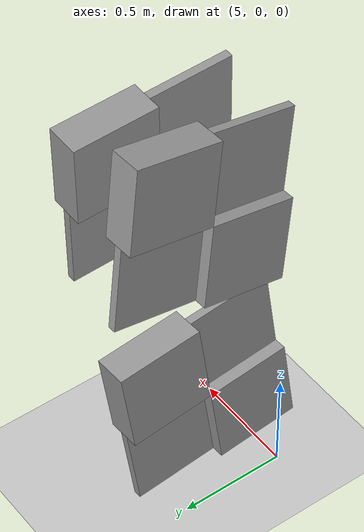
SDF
<sdf version="1.7">
 <world name="default">
  <model name="ground_plane">
   <static>1</static>
   <link name="link">
    <collision name="collision">
     <geometry><plane><normal>0 0 1</normal><size>100 100</size></plane></geometry>
     <surface>
      <contact><collide_bitmask>65535</collide_bitmask></contact>
      <friction><ode><mu>100</mu><mu2>50</mu2></ode></friction>
     </surface>
    </collision>
    <visual name="visual">
     <cast_shadows>0</cast_shadows>
     <geometry><plane><normal>0 0 1</normal><size>100 100</size></plane></geometry>
     <material>
      <script><uri>file://media/materials/scripts/gazebo.material</uri><name>Gazebo/Grey</name></script>
     </material>
    </visual>
   </link>
  </model>
  <model name="wall_slate_55">
   <static>1</static>
   <link name="link_0">
    <inertial><mass>1</mass></inertial>
    <gravity>0</gravity>
    <visual name="visual">
     <pose>0 0.2 0.2 0 -0 0</pose>
     <geometry><box><size>0.16 0.4 0.4</size></box></geometry>
     <material>
      <lighting>1</lighting>
      <script><uri>file://media/materials/scripts/gazebo.material</uri><name>Gazebo/Grey</name></script>
      <shader type="pixel"><normal_map>__default__</normal_map></shader>
      <ambient>0.3 0.3 0.3 1</ambient>
      <diffuse>0.7 0.7 0.7 1</diffuse>
      <specular>0.01 0.01 0.01 1</specular>
      <emissive>0 0 0 1</emissive>
     </material>
    </visual>
    <visual name="ModelPreview_0::link_0::visual_1">
     <pose>0 0.2 -0.2 0 -0 0</pose>
     <geometry><box><size>0.04 0.4 0.4</size></box></geometry>
     <material>
      <lighting>1</lighting>
      <script><uri>file://media/materials/scripts/gazebo.material</uri><name>Gazebo/Grey</name></script>
      <shader type="pixel"><normal_map>__default__</normal_map></shader>
      <ambient>0.3 0.3 0.3 1</ambient>
      <diffuse>0.7 0.7 0.7 1</diffuse>
      <specular>0.01 0.01 0.01 1</specular>
      <emissive>0 0 0 1</emissive>
     </material>
    </visual>
    <visual name="ModelPreview_0::link_0::visual_2">
     <pose>0 -0.2 0.2 0 -0 0</pose>
     <geometry><box><size>0.04 0.4 0.4</size></box></geometry>
     <material>
      <lighting>1</lighting>
      <script><uri>file://media/materials/scripts/gazebo.material</uri><name>Gazebo/Grey</name></script>
      <shader type="pixel"><normal_map>__default__</normal_map></shader>
      <ambient>0.3 0.3 0.3 1</ambient>
      <diffuse>0.7 0.7 0.7 1</diffuse>
      <specular>0.01 0.01 0.01 1</specular>
      <emissive>0 0 0 1</emissive>
     </material>
    </visual>
    <visual name="ModelPreview_0::link_0::visual_3">
     <pose>0 -0.2 -0.2 0 -0 0</pose>
     <geometry><box><size>0.16 0.4 0.4</size></box></geometry>
     <material>
      <lighting>1</lighting>
      <script><uri>file://media/materials/scripts/gazebo.material</uri><name>Gazebo/Grey</name></script>
      <shader type="pixel"><normal_map>__default__</normal_map></shader>
      <ambient>0.3 0.3 0.3 1</ambient>
      <diffuse>0.7 0.7 0.7 1</diffuse>
      <specular>0.01 0.01 0.01 1</specular>
      <emissive>0 0 0 1</emissive>
     </material>
    </visual>
    <collision name="collision_2">
     <pose>0 -0.2 0.2 0 -0 0</pose>
     <geometry><box><size>0.04 0.4 0.4</size></box></geometry>
     <surface>
      <friction>
       <ode><mu>1</mu><mu2>1</mu2><fdir1>0 0 0</fdir1><slip1>0</slip1><slip2>0</slip2></ode>
       <torsional>
        <coefficient>1</coefficient>
        <patch_radius>0</patch_radius>
        <surface_radius>0</surface_radius>
        <use_patch_radius>1</use_patch_radius>
        <ode><slip>0</slip></ode>
       </torsional>
      </friction>
      <bounce><restitution_coefficient>0</restitution_coefficient><threshold>1e+06</threshold></bounce>
      <contact>
       <collide_without_contact>0</collide_without_contact>
       <collide_without_contact_bitmask>1</collide_without_contact_bitmask>
       <collide_bitmask>1</collide_bitmask>
       <ode>
        <soft_cfm>0</soft_cfm>
        <soft_erp>0.2</soft_erp>
        <kp>1e+13</kp>
        <kd>1</kd>
        <max_vel>0.01</max_vel>
        <min_depth>0</min_depth>
       </ode>
       <bullet>
        <split_impulse>1</split_impulse>
        <split_impulse_penetration_threshold>-0.01</split_impulse_penetration_threshold>
        <soft_cfm>0</soft_cfm>
        <soft_erp>0.2</soft_erp>
        <kp>1e+13</kp>
        <kd>1</kd>
       </bullet>
      </contact>
     </surface>
    </collision>
    <collision name="collision_1">
     <pose>0 0.2 -0.2 0 -0 0</pose>
     <geometry><box><size>0.04 0.4 0.4</size></box></geometry>
     <surface>
      <friction>
       <ode><mu>1</mu><mu2>1</mu2><fdir1>0 0 0</fdir1><slip1>0</slip1><slip2>0</slip2></ode>
       <torsional>
        <coefficient>1</coefficient>
        <patch_radius>0</patch_radius>
        <surface_radius>0</surface_radius>
        <use_patch_radius>1</use_patch_radius>
        <ode><slip>0</slip></ode>
       </torsional>
      </friction>
      <bounce><restitution_coefficient>0</restitution_coefficient><threshold>1e+06</threshold></bounce>
      <contact>
       <collide_without_contact>0</collide_without_contact>
       <collide_without_contact_bitmask>1</collide_without_contact_bitmask>
       <collide_bitmask>1</collide_bitmask>
       <ode>
        <soft_cfm>0</soft_cfm>
        <soft_erp>0.2</soft_erp>
        <kp>1e+13</kp>
        <kd>1</kd>
        <max_vel>0.01</max_vel>
        <min_depth>0</min_depth>
       </ode>
       <bullet>
        <split_impulse>1</split_impulse>
        <split_impulse_penetration_threshold>-0.01</split_impulse_penetration_threshold>
        <soft_cfm>0</soft_cfm>
        <soft_erp>0.2</soft_erp>
        <kp>1e+13</kp>
        <kd>1</kd>
       </bullet>
      </contact>
     </surface>
    </collision>
    <collision name="collision_4">
     <pose>0 0.2 0.2 0 -0 0</pose>
     <geometry><box><size>0.16 0.4 0.4</size></box></geometry>
     <surface>
      <friction>
       <ode><mu>1</mu><mu2>1</mu2><fdir1>0 0 0</fdir1><slip1>0</slip1><slip2>0</slip2></ode>
       <torsional>
        <coefficient>1</coefficient>
        <patch_radius>0</patch_radius>
        <surface_radius>0</surface_radius>
        <use_patch_radius>1</use_patch_radius>
        <ode><slip>0</slip></ode>
       </torsional>
      </friction>
      <bounce><restitution_coefficient>0</restitution_coefficient><threshold>1e+06</threshold></bounce>
      <contact>
       <collide_without_contact>0</collide_without_contact>
       <collide_without_contact_bitmask>1</collide_without_contact_bitmask>
       <collide_bitmask>1</collide_bitmask>
       <ode>
        <soft_cfm>0</soft_cfm>
        <soft_erp>0.2</soft_erp>
        <kp>1e+13</kp>
        <kd>1</kd>
        <max_vel>0.01</max_vel>
        <min_depth>0</min_depth>
       </ode>
       <bullet>
        <split_impulse>1</split_impulse>
        <split_impulse_penetration_threshold>-0.01</split_impulse_penetration_threshold>
        <soft_cfm>0</soft_cfm>
        <soft_erp>0.2</soft_erp>
        <kp>1e+13</kp>
        <kd>1</kd>
       </bullet>
      </contact>
     </surface>
    </collision>
    <collision name="collision_3">
     <pose>0 -0.2 -0.2 0 -0 0</pose>
     <geometry><box><size>0.16 0.4 0.4</size></box></geometry>
     <surface>
      <friction>
       <ode><mu>1</mu><mu2>1</mu2><fdir1>0 0 0</fdir1><slip1>0</slip1><slip2>0</slip2></ode>
       <torsional>
        <coefficient>1</coefficient>
        <patch_radius>0</patch_radius>
        <surface_radius>0</surface_radius>
        <use_patch_radius>1</use_patch_radius>
        <ode><slip>0</slip></ode>
       </torsional>
      </friction>
      <bounce><restitution_coefficient>0</restitution_coefficient><threshold>1e+06</threshold></bounce>
      <contact>
       <collide_without_contact>0</collide_without_contact>
       <collide_without_contact_bitmask>1</collide_without_contact_bitmask>
       <collide_bitmask>1</collide_bitmask>
       <ode>
        <soft_cfm>0</soft_cfm>
        <soft_erp>0.2</soft_erp>
        <kp>1e+13</kp>
        <kd>1</kd>
        <max_vel>0.01</max_vel>
        <min_depth>0</min_depth>
       </ode>
       <bullet>
        <split_impulse>1</split_impulse>
        <split_impulse_penetration_threshold>-0.01</split_impulse_penetration_threshold>
        <soft_cfm>0</soft_cfm>
        <soft_erp>0.2</soft_erp>
        <kp>1e+13</kp>
        <kd>1</kd>
       </bullet>
      </contact>
     </surface>
    </collision>
   </link>
   <pose>5.47851 0.341177 1.6 -0.04 -0.04 0.0049</pose>
  </model>
  <model name="wall_slate_77">
   <static>1</static>
   <link name="link_0">
    <inertial><mass>1</mass></inertial>
    <gravity>0</gravity>
    <visual name="visual">
     <pose>0 0.2 0.2 0 -0 0</pose>
     <geometry><box><size>0.16 0.4 0.4</size></box></geometry>
     <material>
      <lighting>1</lighting>
      <script><uri>file://media/materials/scripts/gazebo.material</uri><name>Gazebo/Grey</name></script>
      <shader type="pixel"><normal_map>__default__</normal_map></shader>
      <ambient>0.3 0.3 0.3 1</ambient>
      <diffuse>0.7 0.7 0.7 1</diffuse>
      <specular>0.01 0.01 0.01 1</specular>
      <emissive>0 0 0 1</emissive>
     </material>
    </visual>
    <visual name="ModelPreview_0::link_0::visual_1">
     <pose>0 0.2 -0.2 0 -0 0</pose>
     <geometry><box><size>0.04 0.4 0.4</size></box></geometry>
     <material>
      <lighting>1</lighting>
      <script><uri>file://media/materials/scripts/gazebo.material</uri><name>Gazebo/Grey</name></script>
      <shader type="pixel"><normal_map>__default__</normal_map></shader>
      <ambient>0.3 0.3 0.3 1</ambient>
      <diffuse>0.7 0.7 0.7 1</diffuse>
      <specular>0.01 0.01 0.01 1</specular>
      <emissive>0 0 0 1</emissive>
     </material>
    </visual>
    <visual name="ModelPreview_0::link_0::visual_2">
     <pose>0 -0.2 0.2 0 -0 0</pose>
     <geometry><box><size>0.04 0.4 0.4</size></box></geometry>
     <material>
      <lighting>1</lighting>
      <script><uri>file://media/materials/scripts/gazebo.material</uri><name>Gazebo/Grey</name></script>
      <shader type="pixel"><normal_map>__default__</normal_map></shader>
      <ambient>0.3 0.3 0.3 1</ambient>
      <diffuse>0.7 0.7 0.7 1</diffuse>
      <specular>0.01 0.01 0.01 1</specular>
      <emissive>0 0 0 1</emissive>
     </material>
    </visual>
    <visual name="ModelPreview_0::link_0::visual_3">
     <pose>0 -0.2 -0.2 0 -0 0</pose>
     <geometry><box><size>0.16 0.4 0.4</size></box></geometry>
     <material>
      <lighting>1</lighting>
      <script><uri>file://media/materials/scripts/gazebo.material</uri><name>Gazebo/Grey</name></script>
      <shader type="pixel"><normal_map>__default__</normal_map></shader>
      <ambient>0.3 0.3 0.3 1</ambient>
      <diffuse>0.7 0.7 0.7 1</diffuse>
      <specular>0.01 0.01 0.01 1</specular>
      <emissive>0 0 0 1</emissive>
     </material>
    </visual>
    <collision name="collision_2">
     <pose>0 -0.2 0.2 0 -0 0</pose>
     <geometry><box><size>0.04 0.4 0.4</size></box></geometry>
     <surface>
      <friction>
       <ode><mu>1</mu><mu2>1</mu2><fdir1>0 0 0</fdir1><slip1>0</slip1><slip2>0</slip2></ode>
       <torsional>
        <coefficient>1</coefficient>
        <patch_radius>0</patch_radius>
        <surface_radius>0</surface_radius>
        <use_patch_radius>1</use_patch_radius>
        <ode><slip>0</slip></ode>
       </torsional>
      </friction>
      <bounce><restitution_coefficient>0</restitution_coefficient><threshold>1e+06</threshold></bounce>
      <contact>
       <collide_without_contact>0</collide_without_contact>
       <collide_without_contact_bitmask>1</collide_without_contact_bitmask>
       <collide_bitmask>1</collide_bitmask>
       <ode>
        <soft_cfm>0</soft_cfm>
        <soft_erp>0.2</soft_erp>
        <kp>1e+13</kp>
        <kd>1</kd>
        <max_vel>0.01</max_vel>
        <min_depth>0</min_depth>
       </ode>
       <bullet>
        <split_impulse>1</split_impulse>
        <split_impulse_penetration_threshold>-0.01</split_impulse_penetration_threshold>
        <soft_cfm>0</soft_cfm>
        <soft_erp>0.2</soft_erp>
        <kp>1e+13</kp>
        <kd>1</kd>
       </bullet>
      </contact>
     </surface>
    </collision>
    <collision name="collision_1">
     <pose>0 0.2 -0.2 0 -0 0</pose>
     <geometry><box><size>0.04 0.4 0.4</size></box></geometry>
     <surface>
      <friction>
       <ode><mu>1</mu><mu2>1</mu2><fdir1>0 0 0</fdir1><slip1>0</slip1><slip2>0</slip2></ode>
       <torsional>
        <coefficient>1</coefficient>
        <patch_radius>0</patch_radius>
        <surface_radius>0</surface_radius>
        <use_patch_radius>1</use_patch_radius>
        <ode><slip>0</slip></ode>
       </torsional>
      </friction>
      <bounce><restitution_coefficient>0</restitution_coefficient><threshold>1e+06</threshold></bounce>
      <contact>
       <collide_without_contact>0</collide_without_contact>
       <collide_without_contact_bitmask>1</collide_without_contact_bitmask>
       <collide_bitmask>1</collide_bitmask>
       <ode>
        <soft_cfm>0</soft_cfm>
        <soft_erp>0.2</soft_erp>
        <kp>1e+13</kp>
        <kd>1</kd>
        <max_vel>0.01</max_vel>
        <min_depth>0</min_depth>
       </ode>
       <bullet>
        <split_impulse>1</split_impulse>
        <split_impulse_penetration_threshold>-0.01</split_impulse_penetration_threshold>
        <soft_cfm>0</soft_cfm>
        <soft_erp>0.2</soft_erp>
        <kp>1e+13</kp>
        <kd>1</kd>
       </bullet>
      </contact>
     </surface>
    </collision>
    <collision name="collision_4">
     <pose>0 0.2 0.2 0 -0 0</pose>
     <geometry><box><size>0.16 0.4 0.4</size></box></geometry>
     <surface>
      <friction>
       <ode><mu>1</mu><mu2>1</mu2><fdir1>0 0 0</fdir1><slip1>0</slip1><slip2>0</slip2></ode>
       <torsional>
        <coefficient>1</coefficient>
        <patch_radius>0</patch_radius>
        <surface_radius>0</surface_radius>
        <use_patch_radius>1</use_patch_radius>
        <ode><slip>0</slip></ode>
       </torsional>
      </friction>
      <bounce><restitution_coefficient>0</restitution_coefficient><threshold>1e+06</threshold></bounce>
      <contact>
       <collide_without_contact>0</collide_without_contact>
       <collide_without_contact_bitmask>1</collide_without_contact_bitmask>
       <collide_bitmask>1</collide_bitmask>
       <ode>
        <soft_cfm>0</soft_cfm>
        <soft_erp>0.2</soft_erp>
        <kp>1e+13</kp>
        <kd>1</kd>
        <max_vel>0.01</max_vel>
        <min_depth>0</min_depth>
       </ode>
       <bullet>
        <split_impulse>1</split_impulse>
        <split_impulse_penetration_threshold>-0.01</split_impulse_penetration_threshold>
        <soft_cfm>0</soft_cfm>
        <soft_erp>0.2</soft_erp>
        <kp>1e+13</kp>
        <kd>1</kd>
       </bullet>
      </contact>
     </surface>
    </collision>
    <collision name="collision_3">
     <pose>0 -0.2 -0.2 0 -0 0</pose>
     <geometry><box><size>0.16 0.4 0.4</size></box></geometry>
     <surface>
      <friction>
       <ode><mu>1</mu><mu2>1</mu2><fdir1>0 0 0</fdir1><slip1>0</slip1><slip2>0</slip2></ode>
       <torsional>
        <coefficient>1</coefficient>
        <patch_radius>0</patch_radius>
        <surface_radius>0</surface_radius>
        <use_patch_radius>1</use_patch_radius>
        <ode><slip>0</slip></ode>
       </torsional>
      </friction>
      <bounce><restitution_coefficient>0</restitution_coefficient><threshold>1e+06</threshold></bounce>
      <contact>
       <collide_without_contact>0</collide_without_contact>
       <collide_without_contact_bitmask>1</collide_without_contact_bitmask>
       <collide_bitmask>1</collide_bitmask>
       <ode>
        <soft_cfm>0</soft_cfm>
        <soft_erp>0.2</soft_erp>
        <kp>1e+13</kp>
        <kd>1</kd>
        <max_vel>0.01</max_vel>
        <min_depth>0</min_depth>
       </ode>
       <bullet>
        <split_impulse>1</split_impulse>
        <split_impulse_penetration_threshold>-0.01</split_impulse_penetration_threshold>
        <soft_cfm>0</soft_cfm>
        <soft_erp>0.2</soft_erp>
        <kp>1e+13</kp>
        <kd>1</kd>
       </bullet>
      </contact>
     </surface>
    </collision>
   </link>
   <pose>5.12851 0.341175 0.6 -0.1 0.08 0.0049</pose>
  </model>
  <model name="wall_slate_102">
   <static>1</static>
   <link name="link_0">
    <inertial><mass>1</mass></inertial>
    <gravity>0</gravity>
    <visual name="visual">
     <pose>0 0.2 0.2 0 -0 0</pose>
     <geometry><box><size>0.16 0.4 0.4</size></box></geometry>
     <material>
      <lighting>1</lighting>
      <script><uri>file://media/materials/scripts/gazebo.material</uri><name>Gazebo/Grey</name></script>
      <shader type="pixel"><normal_map>__default__</normal_map></shader>
      <ambient>0.3 0.3 0.3 1</ambient>
      <diffuse>0.7 0.7 0.7 1</diffuse>
      <specular>0.01 0.01 0.01 1</specular>
      <emissive>0 0 0 1</emissive>
     </material>
    </visual>
    <visual name="ModelPreview_0::link_0::visual_1">
     <pose>0 0.2 -0.2 0 -0 0</pose>
     <geometry><box><size>0.04 0.4 0.4</size></box></geometry>
     <material>
      <lighting>1</lighting>
      <script><uri>file://media/materials/scripts/gazebo.material</uri><name>Gazebo/Grey</name></script>
      <shader type="pixel"><normal_map>__default__</normal_map></shader>
      <ambient>0.3 0.3 0.3 1</ambient>
      <diffuse>0.7 0.7 0.7 1</diffuse>
      <specular>0.01 0.01 0.01 1</specular>
      <emissive>0 0 0 1</emissive>
     </material>
    </visual>
    <visual name="ModelPreview_0::link_0::visual_2">
     <pose>0 -0.2 0.2 0 -0 0</pose>
     <geometry><box><size>0.04 0.4 0.4</size></box></geometry>
     <material>
      <lighting>1</lighting>
      <script><uri>file://media/materials/scripts/gazebo.material</uri><name>Gazebo/Grey</name></script>
      <shader type="pixel"><normal_map>__default__</normal_map></shader>
      <ambient>0.3 0.3 0.3 1</ambient>
      <diffuse>0.7 0.7 0.7 1</diffuse>
      <specular>0.01 0.01 0.01 1</specular>
      <emissive>0 0 0 1</emissive>
     </material>
    </visual>
    <visual name="ModelPreview_0::link_0::visual_3">
     <pose>0 -0.2 -0.2 0 -0 0</pose>
     <geometry><box><size>0.16 0.4 0.4</size></box></geometry>
     <material>
      <lighting>1</lighting>
      <script><uri>file://media/materials/scripts/gazebo.material</uri><name>Gazebo/Grey</name></script>
      <shader type="pixel"><normal_map>__default__</normal_map></shader>
      <ambient>0.3 0.3 0.3 1</ambient>
      <diffuse>0.7 0.7 0.7 1</diffuse>
      <specular>0.01 0.01 0.01 1</specular>
      <emissive>0 0 0 1</emissive>
     </material>
    </visual>
    <collision name="collision_2">
     <pose>0 -0.2 0.2 0 -0 0</pose>
     <geometry><box><size>0.04 0.4 0.4</size></box></geometry>
     <surface>
      <friction>
       <ode><mu>1</mu><mu2>1</mu2><fdir1>0 0 0</fdir1><slip1>0</slip1><slip2>0</slip2></ode>
       <torsional>
        <coefficient>1</coefficient>
        <patch_radius>0</patch_radius>
        <surface_radius>0</surface_radius>
        <use_patch_radius>1</use_patch_radius>
        <ode><slip>0</slip></ode>
       </torsional>
      </friction>
      <bounce><restitution_coefficient>0</restitution_coefficient><threshold>1e+06</threshold></bounce>
      <contact>
       <collide_without_contact>0</collide_without_contact>
       <collide_without_contact_bitmask>1</collide_without_contact_bitmask>
       <collide_bitmask>1</collide_bitmask>
       <ode>
        <soft_cfm>0</soft_cfm>
        <soft_erp>0.2</soft_erp>
        <kp>1e+13</kp>
        <kd>1</kd>
        <max_vel>0.01</max_vel>
        <min_depth>0</min_depth>
       </ode>
       <bullet>
        <split_impulse>1</split_impulse>
        <split_impulse_penetration_threshold>-0.01</split_impulse_penetration_threshold>
        <soft_cfm>0</soft_cfm>
        <soft_erp>0.2</soft_erp>
        <kp>1e+13</kp>
        <kd>1</kd>
       </bullet>
      </contact>
     </surface>
    </collision>
    <collision name="collision_1">
     <pose>0 0.2 -0.2 0 -0 0</pose>
     <geometry><box><size>0.04 0.4 0.4</size></box></geometry>
     <surface>
      <friction>
       <ode><mu>1</mu><mu2>1</mu2><fdir1>0 0 0</fdir1><slip1>0</slip1><slip2>0</slip2></ode>
       <torsional>
        <coefficient>1</coefficient>
        <patch_radius>0</patch_radius>
        <surface_radius>0</surface_radius>
        <use_patch_radius>1</use_patch_radius>
        <ode><slip>0</slip></ode>
       </torsional>
      </friction>
      <bounce><restitution_coefficient>0</restitution_coefficient><threshold>1e+06</threshold></bounce>
      <contact>
       <collide_without_contact>0</collide_without_contact>
       <collide_without_contact_bitmask>1</collide_without_contact_bitmask>
       <collide_bitmask>1</collide_bitmask>
       <ode>
        <soft_cfm>0</soft_cfm>
        <soft_erp>0.2</soft_erp>
        <kp>1e+13</kp>
        <kd>1</kd>
        <max_vel>0.01</max_vel>
        <min_depth>0</min_depth>
       </ode>
       <bullet>
        <split_impulse>1</split_impulse>
        <split_impulse_penetration_threshold>-0.01</split_impulse_penetration_threshold>
        <soft_cfm>0</soft_cfm>
        <soft_erp>0.2</soft_erp>
        <kp>1e+13</kp>
        <kd>1</kd>
       </bullet>
      </contact>
     </surface>
    </collision>
    <collision name="collision_4">
     <pose>0 0.2 0.2 0 -0 0</pose>
     <geometry><box><size>0.16 0.4 0.4</size></box></geometry>
     <surface>
      <friction>
       <ode><mu>1</mu><mu2>1</mu2><fdir1>0 0 0</fdir1><slip1>0</slip1><slip2>0</slip2></ode>
       <torsional>
        <coefficient>1</coefficient>
        <patch_radius>0</patch_radius>
        <surface_radius>0</surface_radius>
        <use_patch_radius>1</use_patch_radius>
        <ode><slip>0</slip></ode>
       </torsional>
      </friction>
      <bounce><restitution_coefficient>0</restitution_coefficient><threshold>1e+06</threshold></bounce>
      <contact>
       <collide_without_contact>0</collide_without_contact>
       <collide_without_contact_bitmask>1</collide_without_contact_bitmask>
       <collide_bitmask>1</collide_bitmask>
       <ode>
        <soft_cfm>0</soft_cfm>
        <soft_erp>0.2</soft_erp>
        <kp>1e+13</kp>
        <kd>1</kd>
        <max_vel>0.01</max_vel>
        <min_depth>0</min_depth>
       </ode>
       <bullet>
        <split_impulse>1</split_impulse>
        <split_impulse_penetration_threshold>-0.01</split_impulse_penetration_threshold>
        <soft_cfm>0</soft_cfm>
        <soft_erp>0.2</soft_erp>
        <kp>1e+13</kp>
        <kd>1</kd>
       </bullet>
      </contact>
     </surface>
    </collision>
    <collision name="collision_3">
     <pose>0 -0.2 -0.2 0 -0 0</pose>
     <geometry><box><size>0.16 0.4 0.4</size></box></geometry>
     <surface>
      <friction>
       <ode><mu>1</mu><mu2>1</mu2><fdir1>0 0 0</fdir1><slip1>0</slip1><slip2>0</slip2></ode>
       <torsional>
        <coefficient>1</coefficient>
        <patch_radius>0</patch_radius>
        <surface_radius>0</surface_radius>
        <use_patch_radius>1</use_patch_radius>
        <ode><slip>0</slip></ode>
       </torsional>
      </friction>
      <bounce><restitution_coefficient>0</restitution_coefficient><threshold>1e+06</threshold></bounce>
      <contact>
       <collide_without_contact>0</collide_without_contact>
       <collide_without_contact_bitmask>1</collide_without_contact_bitmask>
       <collide_bitmask>1</collide_bitmask>
       <ode>
        <soft_cfm>0</soft_cfm>
        <soft_erp>0.2</soft_erp>
        <kp>1e+13</kp>
        <kd>1</kd>
        <max_vel>0.01</max_vel>
        <min_depth>0</min_depth>
       </ode>
       <bullet>
        <split_impulse>1</split_impulse>
        <split_impulse_penetration_threshold>-0.01</split_impulse_penetration_threshold>
        <soft_cfm>0</soft_cfm>
        <soft_erp>0.2</soft_erp>
        <kp>1e+13</kp>
        <kd>1</kd>
       </bullet>
      </contact>
     </surface>
    </collision>
   </link>
   <pose>5.12851 0.341175 1.6 0.16 0.08 0.0049</pose>
  </model>
 </world>
</sdf>
